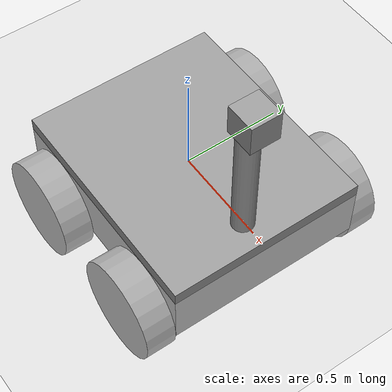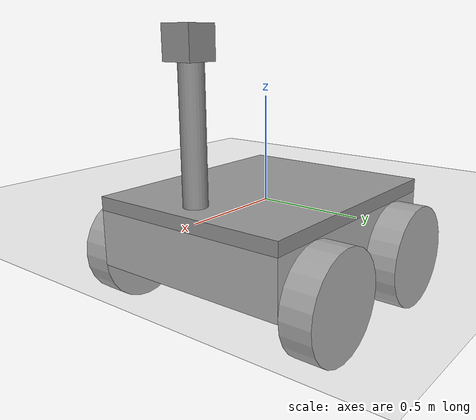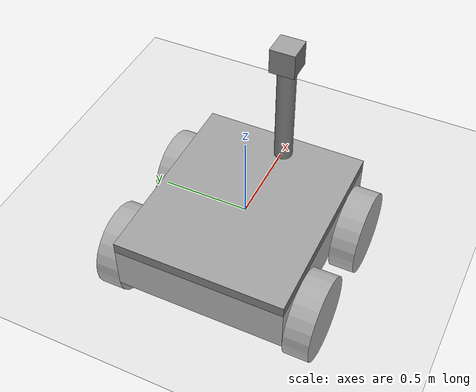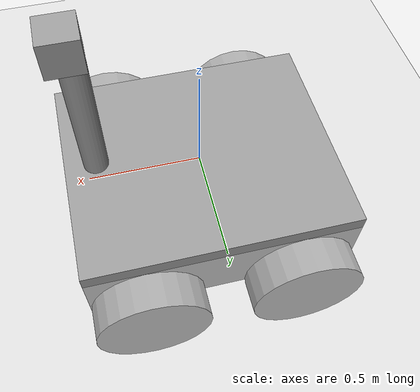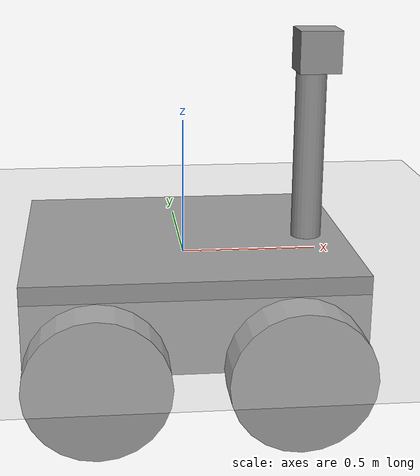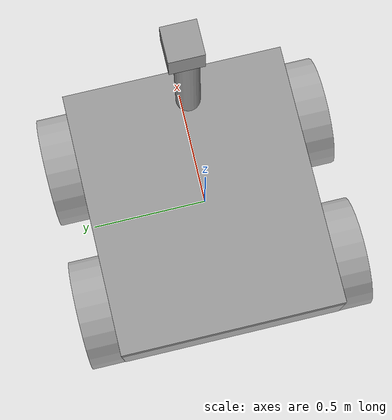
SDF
<sdf version="1.7">
    <world name="camera_sim">

    <plugin
      filename="ignition-gazebo-physics-system"
      name="gz::sim::systems::Physics">
    </plugin>
    <plugin
      filename="ignition-gazebo-sensors-system"
      name="gz::sim::systems::Sensors">
      <render_engine>ogre</render_engine>
    </plugin>
    <plugin
      filename="ignition-gazebo-user-commands-system"
      name="gz::sim::systems::UserCommands">
    </plugin>
    <plugin
      filename="ignition-gazebo-scene-broadcaster-system"
      name="gz::sim::systems::SceneBroadcaster">
    </plugin>

        <include>
            <uri>../models/ground_plane</uri>
        </include>

        <include>
            <uri>../models/robot_model</uri>
        </include>

        <include>
            <uri> https://fuel.gazebosim.org/1.0/OpenRobotics/models/Sun</uri>
        </include>

    </world>
</sdf>

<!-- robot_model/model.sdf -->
<sdf version='1.7'>
  <model name='robot_model'>

  <plugin
    filename="libignition-gazebo-diff-drive-system.so"
    name="ignition::gazebo::systems::DiffDrive">
    <left_joint>chassis_to_left</left_joint>
    <right_joint>chassis_to_right</right_joint>
    <wheel_separation>1.2</wheel_separation>
    <wheel_radius>0.25</wheel_radius>
    <odom_publish_frequency>1</odom_publish_frequency>
    <topic>cmd_vel</topic>
  </plugin>

    <link name='link_0'>
      <inertial>
        <mass>0.395699</mass>
        <inertia>
          <ixx>0.0366635</ixx>
          <ixy>0</ixy>
          <ixz>0</ixz>
          <iyy>0.0498454</iyy>
          <iyz>0</iyz>
          <izz>0.0791317</izz>
        </inertia>
        <pose>0 0 0 0 -0 0</pose>
      </inertial>
      <pose>0.006233 0.0107 -0.103998 0 -0 0</pose>
      <gravity>1</gravity>
      <self_collide>0</self_collide>
      <kinematic>0</kinematic>
      <enable_wind>0</enable_wind>
      <visual name='visual'>
        <pose>0 0 0 0 -0 0</pose>
        <geometry>
          <box>
            <size>1.18311 1 0.334456</size>
          </box>
        </geometry>
        <material>
          <lighting>1</lighting>
          <script>
            <uri>file://media/materials/scripts/gazebo.material</uri>
            <name>Gazebo/Grey</name>
          </script>
          <shader type='pixel'>
            <normal_map>__default__</normal_map>
          </shader>
          <ambient>0.3 0.3 0.3 1</ambient>
          <diffuse>0.7 0.7 0.7 1</diffuse>
          <specular>0.01 0.01 0.01 1</specular>
          <emissive>0 0 0 1</emissive>
        </material>
        <transparency>0</transparency>
        <cast_shadows>1</cast_shadows>
      </visual>
      <collision name='collision'>
        <laser_retro>0</laser_retro>
        <max_contacts>10</max_contacts>
        <pose>0 0 0 0 -0 0</pose>
        <geometry>
          <box>
            <size>1.18311 1 0.334456</size>
          </box>
        </geometry>
        <surface>
          <friction>
            <ode>
              <mu>1</mu>
              <mu2>1</mu2>
              <fdir1>0 0 0</fdir1>
              <slip1>0</slip1>
              <slip2>0</slip2>
            </ode>
            <torsional>
              <coefficient>1</coefficient>
              <patch_radius>0</patch_radius>
              <surface_radius>0</surface_radius>
              <use_patch_radius>1</use_patch_radius>
              <ode>
                <slip>0</slip>
              </ode>
            </torsional>
          </friction>
          <bounce>
            <restitution_coefficient>0</restitution_coefficient>
            <threshold>1e+06</threshold>
          </bounce>
          <contact>
            <collide_without_contact>0</collide_without_contact>
            <collide_without_contact_bitmask>1</collide_without_contact_bitmask>
            <collide_bitmask>1</collide_bitmask>
            <ode>
              <soft_cfm>0</soft_cfm>
              <soft_erp>0.2</soft_erp>
              <kp>1e+13</kp>
              <kd>1</kd>
              <max_vel>0.01</max_vel>
              <min_depth>0</min_depth>
            </ode>
            <bullet>
              <split_impulse>1</split_impulse>
              <split_impulse_penetration_threshold>-0.01</split_impulse_penetration_threshold>
              <soft_cfm>0</soft_cfm>
              <soft_erp>0.2</soft_erp>
              <kp>1e+13</kp>
              <kd>1</kd>
            </bullet>
          </contact>
        </surface>
      </collision>
    </link>
    <link name='link_1'>
      <inertial>
        <mass>1</mass>
        <inertia>
          <ixx>0.145833</ixx>
          <ixy>0</ixy>
          <ixz>0</ixz>
          <iyy>0.145833</iyy>
          <iyz>0</iyz>
          <izz>0.125</izz>
        </inertia>
        <pose>0 0 0 0 -0 0</pose>
      </inertial>
      <pose>0.347788 -0.564324 -0.253998 1.5707 -0 0</pose>
      <gravity>1</gravity>
      <self_collide>0</self_collide>
      <kinematic>0</kinematic>
      <enable_wind>0</enable_wind>
      <visual name='visual'>
        <pose>0 0 0 0 -0 0</pose>
        <geometry>
          <cylinder>
            <radius>0.25</radius>
            <length>0.15</length>
          </cylinder>
        </geometry>
        <material>
          <lighting>1</lighting>
          <script>
            <uri>file://media/materials/scripts/gazebo.material</uri>
            <name>Gazebo/Grey</name>
          </script>
          <shader type='pixel'>
            <normal_map>__default__</normal_map>
          </shader>
          <ambient>0.3 0.3 0.3 1</ambient>
          <diffuse>0.7 0.7 0.7 1</diffuse>
          <specular>0.01 0.01 0.01 1</specular>
          <emissive>0 0 0 1</emissive>
        </material>
        <transparency>0</transparency>
        <cast_shadows>1</cast_shadows>
      </visual>
      <collision name='collision'>
        <laser_retro>0</laser_retro>
        <max_contacts>10</max_contacts>
        <pose>0 0 0 0 -0 0</pose>
        <geometry>
          <cylinder>
            <radius>0.25</radius>
            <length>0.15</length>
          </cylinder>
        </geometry>
        <surface>
          <friction>
            <ode>
              <mu>1</mu>
              <mu2>1</mu2>
              <fdir1>0 0 0</fdir1>
              <slip1>0</slip1>
              <slip2>0</slip2>
            </ode>
            <torsional>
              <coefficient>1</coefficient>
              <patch_radius>0</patch_radius>
              <surface_radius>0</surface_radius>
              <use_patch_radius>1</use_patch_radius>
              <ode>
                <slip>0</slip>
              </ode>
            </torsional>
          </friction>
          <bounce>
            <restitution_coefficient>0</restitution_coefficient>
            <threshold>1e+06</threshold>
          </bounce>
          <contact>
            <collide_without_contact>0</collide_without_contact>
            <collide_without_contact_bitmask>1</collide_without_contact_bitmask>
            <collide_bitmask>1</collide_bitmask>
            <ode>
              <soft_cfm>0</soft_cfm>
              <soft_erp>0.2</soft_erp>
              <kp>1e+13</kp>
              <kd>1</kd>
              <max_vel>0.01</max_vel>
              <min_depth>0</min_depth>
            </ode>
            <bullet>
              <split_impulse>1</split_impulse>
              <split_impulse_penetration_threshold>-0.01</split_impulse_penetration_threshold>
              <soft_cfm>0</soft_cfm>
              <soft_erp>0.2</soft_erp>
              <kp>1e+13</kp>
              <kd>1</kd>
            </bullet>
          </contact>
        </surface>
      </collision>
    </link>
    <link name='link_1_clone'>
      <inertial>
        <mass>1</mass>
        <inertia>
          <ixx>0.145833</ixx>
          <ixy>0</ixy>
          <ixz>0</ixz>
          <iyy>0.145833</iyy>
          <iyz>0</iyz>
          <izz>0.125</izz>
        </inertia>
        <pose>0 0 0 0 -0 0</pose>
      </inertial>
      <pose>0.347788 0.585721 -0.253998 1.5707 -0 0</pose>
      <gravity>1</gravity>
      <self_collide>0</self_collide>
      <kinematic>0</kinematic>
      <enable_wind>0</enable_wind>
      <visual name='visual'>
        <pose>0 0 0 0 -0 0</pose>
        <geometry>
          <cylinder>
            <radius>0.25</radius>
            <length>0.15</length>
          </cylinder>
        </geometry>
        <material>
          <lighting>1</lighting>
          <script>
            <uri>file://media/materials/scripts/gazebo.material</uri>
            <name>Gazebo/Grey</name>
          </script>
          <shader type='pixel'>
            <normal_map>__default__</normal_map>
          </shader>
          <ambient>0.3 0.3 0.3 1</ambient>
          <diffuse>0.7 0.7 0.7 1</diffuse>
          <specular>0.01 0.01 0.01 1</specular>
          <emissive>0 0 0 1</emissive>
        </material>
        <transparency>0</transparency>
        <cast_shadows>1</cast_shadows>
      </visual>
      <collision name='collision'>
        <laser_retro>0</laser_retro>
        <max_contacts>10</max_contacts>
        <pose>0 0 0 0 -0 0</pose>
        <geometry>
          <cylinder>
            <radius>0.25</radius>
            <length>0.15</length>
          </cylinder>
        </geometry>
        <surface>
          <friction>
            <ode>
              <mu>1</mu>
              <mu2>1</mu2>
              <fdir1>0 0 0</fdir1>
              <slip1>0</slip1>
              <slip2>0</slip2>
            </ode>
            <torsional>
              <coefficient>1</coefficient>
              <patch_radius>0</patch_radius>
              <surface_radius>0</surface_radius>
              <use_patch_radius>1</use_patch_radius>
              <ode>
                <slip>0</slip>
              </ode>
            </torsional>
          </friction>
          <bounce>
            <restitution_coefficient>0</restitution_coefficient>
            <threshold>1e+06</threshold>
          </bounce>
          <contact>
            <collide_without_contact>0</collide_without_contact>
            <collide_without_contact_bitmask>1</collide_without_contact_bitmask>
            <collide_bitmask>1</collide_bitmask>
            <ode>
              <soft_cfm>0</soft_cfm>
              <soft_erp>0.2</soft_erp>
              <kp>1e+13</kp>
              <kd>1</kd>
              <max_vel>0.01</max_vel>
              <min_depth>0</min_depth>
            </ode>
            <bullet>
              <split_impulse>1</split_impulse>
              <split_impulse_penetration_threshold>-0.01</split_impulse_penetration_threshold>
              <soft_cfm>0</soft_cfm>
              <soft_erp>0.2</soft_erp>
              <kp>1e+13</kp>
              <kd>1</kd>
            </bullet>
          </contact>
        </surface>
      </collision>
    </link>
    <link name='link_1_clone_0'>
      <inertial>
        <mass>1</mass>
        <inertia>
          <ixx>0.145833</ixx>
          <ixy>0</ixy>
          <ixz>0</ixz>
          <iyy>0.145833</iyy>
          <iyz>0</iyz>
          <izz>0.125</izz>
        </inertia>
        <pose>0 0 0 0 -0 0</pose>
      </inertial>
      <pose>-0.335323 -0.564324 -0.253998 1.5707 -0 0</pose>
      <gravity>1</gravity>
      <self_collide>0</self_collide>
      <kinematic>0</kinematic>
      <enable_wind>0</enable_wind>
      <visual name='visual'>
        <pose>0 0 0 0 -0 0</pose>
        <geometry>
          <cylinder>
            <radius>0.25</radius>
            <length>0.15</length>
          </cylinder>
        </geometry>
        <material>
          <lighting>1</lighting>
          <script>
            <uri>file://media/materials/scripts/gazebo.material</uri>
            <name>Gazebo/Grey</name>
          </script>
          <shader type='pixel'>
            <normal_map>__default__</normal_map>
          </shader>
          <ambient>0.3 0.3 0.3 1</ambient>
          <diffuse>0.7 0.7 0.7 1</diffuse>
          <specular>0.01 0.01 0.01 1</specular>
          <emissive>0 0 0 1</emissive>
        </material>
        <transparency>0</transparency>
        <cast_shadows>1</cast_shadows>
      </visual>
      <collision name='collision'>
        <laser_retro>0</laser_retro>
        <max_contacts>10</max_contacts>
        <pose>0 0 0 0 -0 0</pose>
        <geometry>
          <cylinder>
            <radius>0.25</radius>
            <length>0.15</length>
          </cylinder>
        </geometry>
        <surface>
          <friction>
            <ode>
              <mu>1</mu>
              <mu2>1</mu2>
              <fdir1>0 0 0</fdir1>
              <slip1>0</slip1>
              <slip2>0</slip2>
            </ode>
            <torsional>
              <coefficient>1</coefficient>
              <patch_radius>0</patch_radius>
              <surface_radius>0</surface_radius>
              <use_patch_radius>1</use_patch_radius>
              <ode>
                <slip>0</slip>
              </ode>
            </torsional>
          </friction>
          <bounce>
            <restitution_coefficient>0</restitution_coefficient>
            <threshold>1e+06</threshold>
          </bounce>
          <contact>
            <collide_without_contact>0</collide_without_contact>
            <collide_without_contact_bitmask>1</collide_without_contact_bitmask>
            <collide_bitmask>1</collide_bitmask>
            <ode>
              <soft_cfm>0</soft_cfm>
              <soft_erp>0.2</soft_erp>
              <kp>1e+13</kp>
              <kd>1</kd>
              <max_vel>0.01</max_vel>
              <min_depth>0</min_depth>
            </ode>
            <bullet>
              <split_impulse>1</split_impulse>
              <split_impulse_penetration_threshold>-0.01</split_impulse_penetration_threshold>
              <soft_cfm>0</soft_cfm>
              <soft_erp>0.2</soft_erp>
              <kp>1e+13</kp>
              <kd>1</kd>
            </bullet>
          </contact>
        </surface>
      </collision>
    </link>
    <link name='link_1_clone_1'>
      <inertial>
        <mass>1</mass>
        <inertia>
          <ixx>0.145833</ixx>
          <ixy>0</ixy>
          <ixz>0</ixz>
          <iyy>0.145833</iyy>
          <iyz>0</iyz>
          <izz>0.125</izz>
        </inertia>
        <pose>0 0 0 0 -0 0</pose>
      </inertial>
      <pose>-0.335323 0.585721 -0.253998 1.5707 -0 0</pose>
      <gravity>1</gravity>
      <self_collide>0</self_collide>
      <kinematic>0</kinematic>
      <enable_wind>0</enable_wind>
      <visual name='visual'>
        <pose>0 0 0 0 -0 0</pose>
        <geometry>
          <cylinder>
            <radius>0.25</radius>
            <length>0.15</length>
          </cylinder>
        </geometry>
        <material>
          <lighting>1</lighting>
          <script>
            <uri>file://media/materials/scripts/gazebo.material</uri>
            <name>Gazebo/Grey</name>
          </script>
          <shader type='pixel'>
            <normal_map>__default__</normal_map>
          </shader>
          <ambient>0.3 0.3 0.3 1</ambient>
          <diffuse>0.7 0.7 0.7 1</diffuse>
          <specular>0.01 0.01 0.01 1</specular>
          <emissive>0 0 0 1</emissive>
        </material>
        <transparency>0</transparency>
        <cast_shadows>1</cast_shadows>
      </visual>
      <collision name='collision'>
        <laser_retro>0</laser_retro>
        <max_contacts>10</max_contacts>
        <pose>0 0 0 0 -0 0</pose>
        <geometry>
          <cylinder>
            <radius>0.25</radius>
            <length>0.15</length>
          </cylinder>
        </geometry>
        <surface>
          <friction>
            <ode>
              <mu>1</mu>
              <mu2>1</mu2>
              <fdir1>0 0 0</fdir1>
              <slip1>0</slip1>
              <slip2>0</slip2>
            </ode>
            <torsional>
              <coefficient>1</coefficient>
              <patch_radius>0</patch_radius>
              <surface_radius>0</surface_radius>
              <use_patch_radius>1</use_patch_radius>
              <ode>
                <slip>0</slip>
              </ode>
            </torsional>
          </friction>
          <bounce>
            <restitution_coefficient>0</restitution_coefficient>
            <threshold>1e+06</threshold>
          </bounce>
          <contact>
            <collide_without_contact>0</collide_without_contact>
            <collide_without_contact_bitmask>1</collide_without_contact_bitmask>
            <collide_bitmask>1</collide_bitmask>
            <ode>
              <soft_cfm>0</soft_cfm>
              <soft_erp>0.2</soft_erp>
              <kp>1e+13</kp>
              <kd>1</kd>
              <max_vel>0.01</max_vel>
              <min_depth>0</min_depth>
            </ode>
            <bullet>
              <split_impulse>1</split_impulse>
              <split_impulse_penetration_threshold>-0.01</split_impulse_penetration_threshold>
              <soft_cfm>0</soft_cfm>
              <soft_erp>0.2</soft_erp>
              <kp>1e+13</kp>
              <kd>1</kd>
            </bullet>
          </contact>
        </surface>
      </collision>
    </link>
    <link name='link_2'>
      <inertial>
        <mass>0.00746507</mass>
        <inertia>
          <ixx>0.00023896</ixx>
          <ixy>0</ixy>
          <ixz>0</ixz>
          <iyy>0.00023896</iyy>
          <iyz>0</iyz>
          <izz>1.13792e-05</izz>
        </inertia>
        <pose>0 0 0 0 -0 0</pose>
      </inertial>
      <pose>0.457787 -0.031693 0.369407 0 -0 0</pose>
      <visual name='visual'>
        <pose>0 0 0 0 -0 0</pose>
        <geometry>
          <cylinder>
            <radius>0.0552146</radius>
            <length>0.612355</length>
          </cylinder>
        </geometry>
        <material>
          <lighting>1</lighting>
          <script>
            <uri>file://media/materials/scripts/gazebo.material</uri>
            <name>Gazebo/Grey</name>
          </script>
          <shader type='pixel'/>
          <emissive>0 0 0 1</emissive>
        </material>
        <transparency>0</transparency>
        <cast_shadows>1</cast_shadows>
      </visual>
      <collision name='collision'>
        <laser_retro>0</laser_retro>
        <max_contacts>10</max_contacts>
        <pose>0 0 0 0 -0 0</pose>
        <geometry>
          <cylinder>
            <radius>0.055215</radius>
            <length>0.612355</length>
          </cylinder>
        </geometry>
        <surface>
          <friction>
            <ode>
              <mu>1</mu>
              <mu2>1</mu2>
              <fdir1>0 0 0</fdir1>
              <slip1>0</slip1>
              <slip2>0</slip2>
            </ode>
            <torsional>
              <coefficient>1</coefficient>
              <patch_radius>0</patch_radius>
              <surface_radius>0</surface_radius>
              <use_patch_radius>1</use_patch_radius>
              <ode>
                <slip>0</slip>
              </ode>
            </torsional>
          </friction>
          <bounce>
            <restitution_coefficient>0</restitution_coefficient>
            <threshold>1e+06</threshold>
          </bounce>
          <contact>
            <collide_without_contact>0</collide_without_contact>
            <collide_without_contact_bitmask>1</collide_without_contact_bitmask>
            <collide_bitmask>1</collide_bitmask>
            <ode>
              <soft_cfm>0</soft_cfm>
              <soft_erp>0.2</soft_erp>
              <kp>1e+13</kp>
              <kd>1</kd>
              <max_vel>0.01</max_vel>
              <min_depth>0</min_depth>
            </ode>
            <bullet>
              <split_impulse>1</split_impulse>
              <split_impulse_penetration_threshold>-0.01</split_impulse_penetration_threshold>
              <soft_cfm>0</soft_cfm>
              <soft_erp>0.2</soft_erp>
              <kp>1e+13</kp>
              <kd>1</kd>
            </bullet>
          </contact>
        </surface>
      </collision>
    </link>
    <link name='camera'>
      <inertial>
        <mass>1</mass>
        <inertia>
          <ixx>0.166667</ixx>
          <ixy>0</ixy>
          <ixz>0</ixz>
          <iyy>0.166667</iyy>
          <iyz>0</iyz>
          <izz>0.166667</izz>
        </inertia>
        <pose>0 0 0 0 -0 0</pose>
      </inertial>
      <pose>0.477573 -0.0218 0.750582 0 -0 0</pose>
      <gravity>1</gravity>
      <self_collide>0</self_collide>
      <kinematic>0</kinematic>
      <enable_wind>0</enable_wind>
      <visual name='visual'>
        <pose>0 0 0 0 -0 0</pose>
        <geometry>
          <box>
            <size>0.15 0.15 0.15</size>
          </box>
        </geometry>
        <material>
          <lighting>1</lighting>
          <script>
            <uri>file://media/materials/scripts/gazebo.material</uri>
            <name>Gazebo/Grey</name>
          </script>
          <shader type='pixel'>
            <normal_map>__default__</normal_map>
          </shader>
          <ambient>0 0 0 1</ambient>
          <diffuse>0.7 0.7 0.7 1</diffuse>
          <specular>0.01 0.01 0.01 1</specular>
          <emissive>0 0 0 1</emissive>
        </material>
        <transparency>0</transparency>
        <cast_shadows>1</cast_shadows>
      </visual>

      <sensor name="camera" type="camera">
          <camera>
            <horizontal_fov>1.047</horizontal_fov>
            <image>
              <width>320</width>
              <height>240</height>
            </image>
            <clip>
              <near>0.1</near>
              <far>100</far>
            </clip>
          </camera>
          <always_on>1</always_on>
          <update_rate>30</update_rate>
          <visualize>true</visualize>
          <topic>camera</topic>
        </sensor>

      <collision name='collision'>
        <laser_retro>0</laser_retro>
        <max_contacts>10</max_contacts>
        <pose>0 0 0 0 -0 0</pose>
        <geometry>
          <box>
            <size>0.15 0.15 0.15</size>
          </box>
        </geometry>
        <surface>
          <friction>
            <ode>
              <mu>1</mu>
              <mu2>1</mu2>
              <fdir1>0 0 0</fdir1>
              <slip1>0</slip1>
              <slip2>0</slip2>
            </ode>
            <torsional>
              <coefficient>1</coefficient>
              <patch_radius>0</patch_radius>
              <surface_radius>0</surface_radius>
              <use_patch_radius>1</use_patch_radius>
              <ode>
                <slip>0</slip>
              </ode>
            </torsional>
          </friction>
          <bounce>
            <restitution_coefficient>0</restitution_coefficient>
            <threshold>1e+06</threshold>
          </bounce>
          <contact>
            <collide_without_contact>0</collide_without_contact>
            <collide_without_contact_bitmask>1</collide_without_contact_bitmask>
            <collide_bitmask>1</collide_bitmask>
            <ode>
              <soft_cfm>0</soft_cfm>
              <soft_erp>0.2</soft_erp>
              <kp>1e+13</kp>
              <kd>1</kd>
              <max_vel>0.01</max_vel>
              <min_depth>0</min_depth>
            </ode>
            <bullet>
              <split_impulse>1</split_impulse>
              <split_impulse_penetration_threshold>-0.01</split_impulse_penetration_threshold>
              <soft_cfm>0</soft_cfm>
              <soft_erp>0.2</soft_erp>
              <kp>1e+13</kp>
              <kd>1</kd>
            </bullet>
          </contact>
        </surface>
      </collision>
    </link>
    <joint name='chassis_to_left' type='revolute'>
      <parent>link_0</parent>
      <child>link_1_clone</child>
      <pose>0 0 0 0 -0 0</pose>
      <axis>
        <xyz>0 0 1</xyz>
        <limit>
          <lower>-1.79769e+308</lower>
          <upper>1.79769e+308</upper>
          <effort>-1</effort>
          <velocity>-1</velocity>
        </limit>
        <dynamics>
          <spring_reference>0</spring_reference>
          <spring_stiffness>0</spring_stiffness>
          <damping>0</damping>
          <friction>0</friction>
        </dynamics>
      </axis>
      <physics>
        <ode>
          <limit>
            <cfm>0</cfm>
            <erp>0.2</erp>
          </limit>
          <suspension>
            <cfm>0</cfm>
            <erp>0.2</erp>
          </suspension>
        </ode>
      </physics>
    </joint>
    <joint name='chassis_to_right' type='revolute'>
      <parent>link_0</parent>
      <child>link_1</child>
      <pose>0 0 0 0 -0 0</pose>
      <axis>
        <xyz>0 0 1</xyz>
        <limit>
          <lower>-1.79769e+308</lower>
          <upper>1.79769e+308</upper>
          <effort>-1</effort>
          <velocity>-1</velocity>
        </limit>
        <dynamics>
          <spring_reference>0</spring_reference>
          <spring_stiffness>0</spring_stiffness>
          <damping>0</damping>
          <friction>0</friction>
        </dynamics>
      </axis>
      <physics>
        <ode>
          <limit>
            <cfm>0</cfm>
            <erp>0.2</erp>
          </limit>
          <suspension>
            <cfm>0</cfm>
            <erp>0.2</erp>
          </suspension>
        </ode>
      </physics>
    </joint>
    <joint name='link_0_JOINT_2' type='fixed'>
      <parent>link_0</parent>
      <child>link_1_clone_1</child>
      <pose>0 0 0 0 -0 0</pose>
      <physics>
        <ode>
          <limit>
            <cfm>0</cfm>
            <erp>0.2</erp>
          </limit>
          <suspension>
            <cfm>0</cfm>
            <erp>0.2</erp>
          </suspension>
        </ode>
      </physics>
    </joint>
    <joint name='link_0_JOINT_3' type='fixed'>
      <parent>link_0</parent>
      <child>link_1_clone_0</child>
      <pose>0 0 0 0 -0 0</pose>
      <physics>
        <ode>
          <limit>
            <cfm>0</cfm>
            <erp>0.2</erp>
          </limit>
          <suspension>
            <cfm>0</cfm>
            <erp>0.2</erp>
          </suspension>
        </ode>
      </physics>
    </joint>
    <joint name='link_0_JOINT_4' type='fixed'>
      <parent>link_0</parent>
      <child>link_2</child>
      <pose>0 0 0 0 -0 0</pose>
      <physics>
        <ode>
          <limit>
            <cfm>0</cfm>
            <erp>0.2</erp>
          </limit>
          <suspension>
            <cfm>0</cfm>
            <erp>0.2</erp>
          </suspension>
        </ode>
      </physics>
    </joint>
    <joint name='rod_to_cam' type='revolute'>
      <parent>link_2</parent>
      <child>camera</child>
      <pose>0 0 0 0 -0 0</pose>
      <axis>
        <xyz>0 0 1</xyz>
        <limit>
          <lower>-1.79769e+308</lower>
          <upper>1.79769e+308</upper>
          <effort>-1</effort>
          <velocity>-1</velocity>
        </limit>
        <dynamics>
          <spring_reference>0</spring_reference>
          <spring_stiffness>0</spring_stiffness>
          <damping>0</damping>
          <friction>0</friction>
        </dynamics>
      </axis>
      <physics>
        <ode>
          <limit>
            <cfm>0</cfm>
            <erp>0.2</erp>
          </limit>
          <suspension>
            <cfm>0</cfm>
            <erp>0.2</erp>
          </suspension>
        </ode>
      </physics>
    </joint>
    <static>0</static>
    <allow_auto_disable>1</allow_auto_disable>
  </model>
</sdf>
